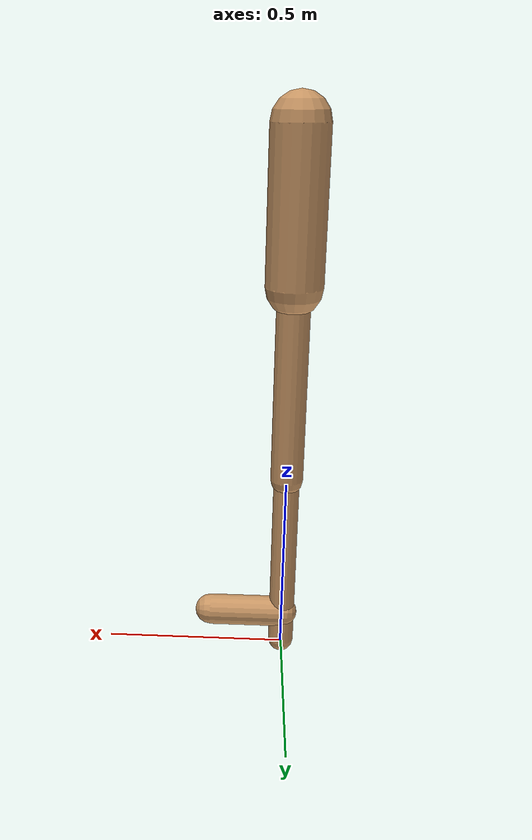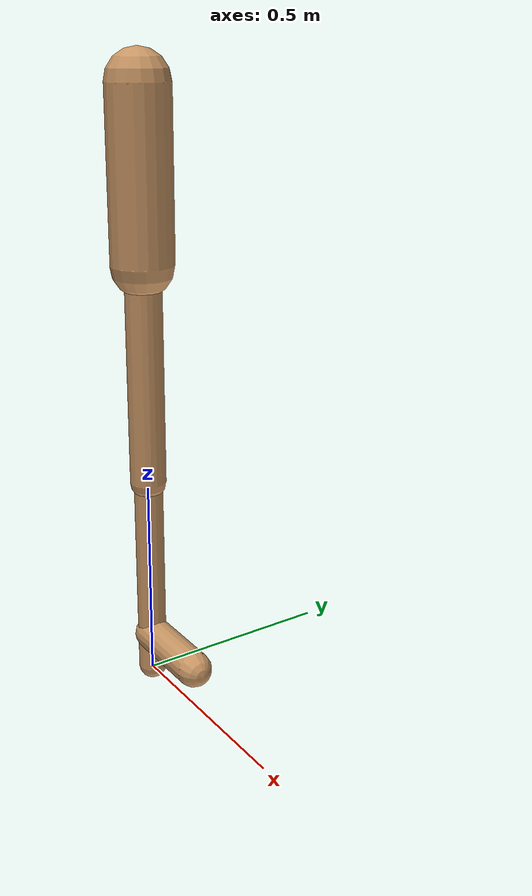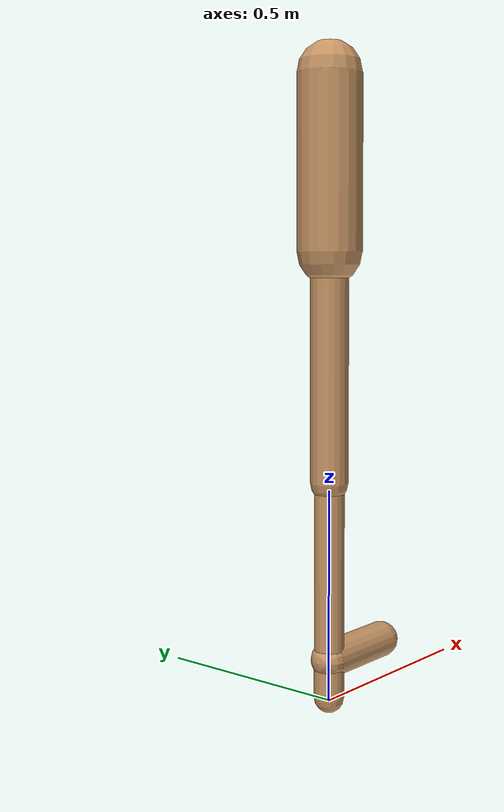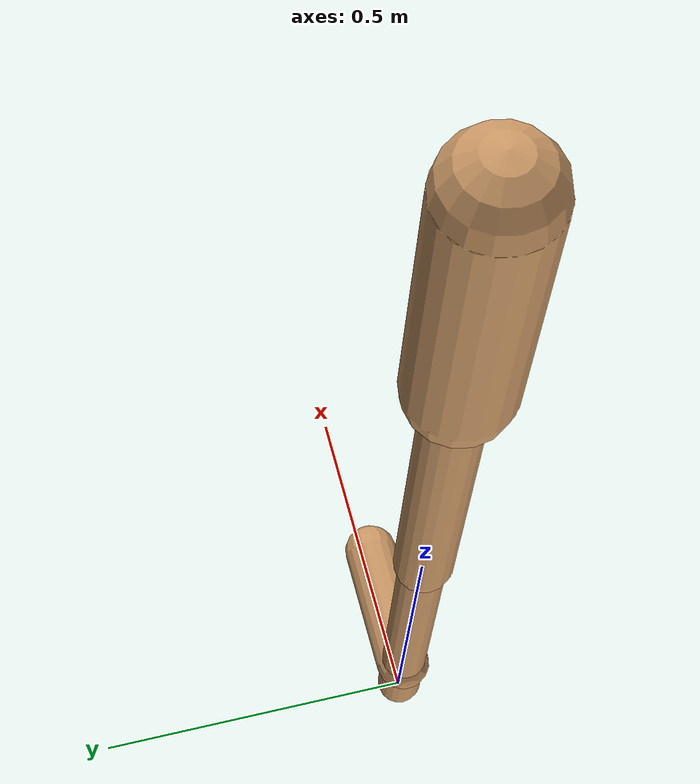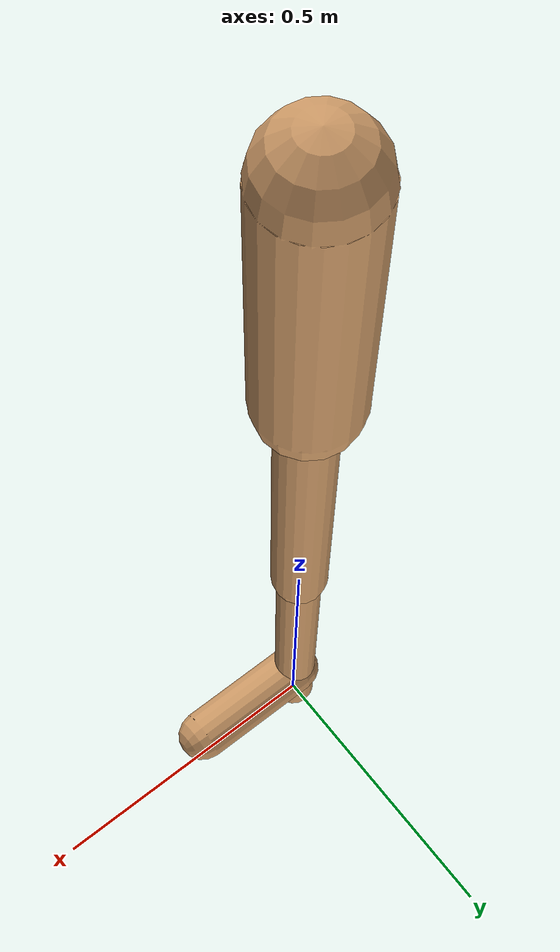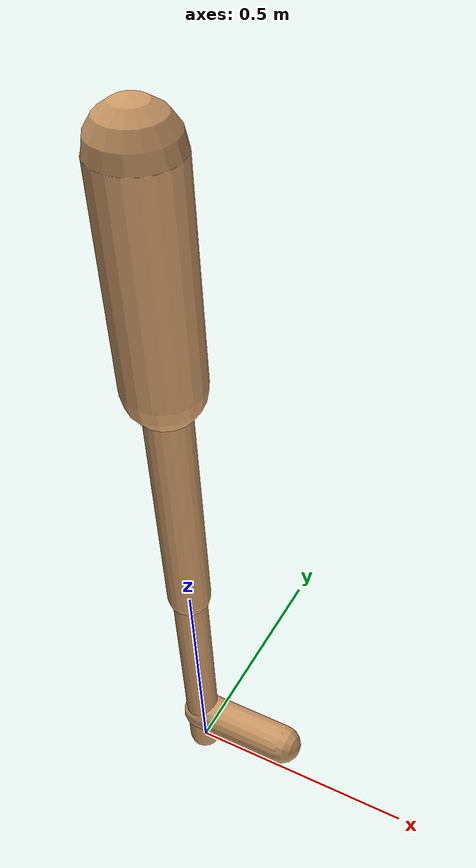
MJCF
<mujoco model="walker2d">
  <compiler angle="degree" coordinate="global" inertiafromgeom="true" />
  <default>
    <joint armature="0.01" damping=".1" limited="true" />
    <geom conaffinity="0" condim="3" contype="1" density="1000" friction="0.8 .1 .1" rgba="0.8 0.6 .4 1" />
  </default>
  <option integrator="RK4" timestep="0.002" />
  <worldbody>

    <body name="torso" pos="0 0 0.1737228589708925">
      <joint armature="0" axis="1 0 0" damping="0" limited="false" name="ignorex" pos="0 0 0" stiffness="0" type="slide" />
      <joint armature="0" axis="0 0 1" damping="0" limited="false" name="ignorez" pos="0 0 0" ref="1.25" stiffness="0" type="slide" />
      <joint armature="0" axis="0 1 0" damping="0" limited="false" name="ignorey" pos="0 0 0" stiffness="0" type="hinge" />
      <geom fromto="0 0 1.45 0 0 1.05" name="torso_geom" size="0.07511128208092743" type="capsule" />
      <body name="thigh">
        <joint axis="0 -1 0" name="thigh_joint" pos="0 0 1.05" range="-150 0" type="hinge" />
        <geom fromto="0.0 0.0 1.05 0.0 0.0 0.5177102246979982" name="thigh_geom" size="0.04409916138473556" type="capsule" />
        <body name="leg" pos="0.0 0.0 -0.08228977530200177">
          <joint axis="0 -1 0" name="leg_joint" pos="0 0 0.6" range="-150 0" type="hinge" />
          <geom fromto="0.0 0.0 0.6 0.0 0.0 0.008566916331109217" name="leg_geom" size="0.03527932910778845" type="capsule" />
          <body name="foot" pos="0.0 0.0 -0.09143308366889079">
            <joint axis="0 -1 0" name="foot_joint" pos="0 0 0.1" range="-45 45" type="hinge" />
            <geom fromto="-0.0 0.0 0.1 0.20578988613839894 0.0 0.1" name="foot_geom" size="0.04306107258331145" type="capsule" />
          </body>
        </body>
      </body>

      <body name="thigh_left">
        <joint axis="0 -1 0" name="thigh_left_joint" pos="0 0 1.05" range="-150 0" type="hinge" />
        <geom fromto="0.0 0.0 1.05 0.0 0.0 0.5177102246979982" name="thigh_left_geom" rgba=".7 .3 .6 1" size="0.04409916138473556" type="capsule" />
        <body name="leg_left" pos="0.0 0.0 -0.08228977530200177">
          <joint axis="0 -1 0" name="leg_left_joint" pos="0 0 0.6" range="-150 0" type="hinge" />
          <geom fromto="0.0 0.0 0.6 0.0 0.0 0.008566916331109217" name="leg_left_geom" rgba=".7 .3 .6 1" size="0.03527932910778845" type="capsule" />
          <body name="foot_left" pos="0.0 0.0 -0.09143308366889079">
            <joint axis="0 -1 0" name="foot_left_joint" pos="0 0 0.1" range="-45 45" type="hinge" />
            <geom fromto="-0.0 0.0 0.1 0.20578988613839894 0.0 0.1" name="foot_left_geom" rgba=".7 .3 .6 1" size="0.04306107258331145" type="capsule" />
          </body>
        </body>
      </body>
    </body>
  </worldbody>
  <actuator>

    <motor ctrllimited="true" ctrlrange="-1.0 1.0" gear="100" joint="thigh_joint" />
    <motor ctrllimited="true" ctrlrange="-1.0 1.0" gear="100" joint="leg_joint" />
    <motor ctrllimited="true" ctrlrange="-1.0 1.0" gear="100" joint="foot_joint" />
    <motor ctrllimited="true" ctrlrange="-1.0 1.0" gear="100" joint="thigh_left_joint" />
    <motor ctrllimited="true" ctrlrange="-1.0 1.0" gear="100" joint="leg_left_joint" />
    <motor ctrllimited="true" ctrlrange="-1.0 1.0" gear="100" joint="foot_left_joint" />

  </actuator>
</mujoco>
